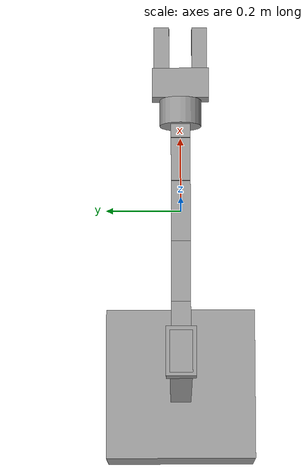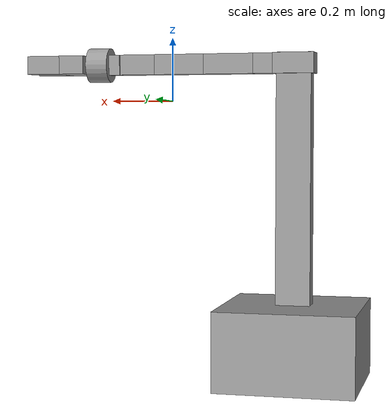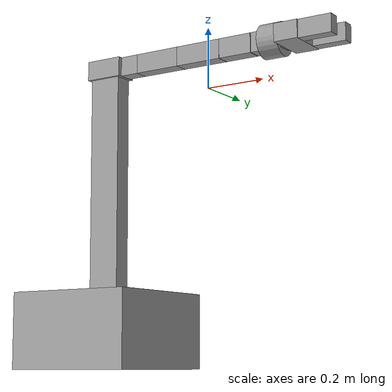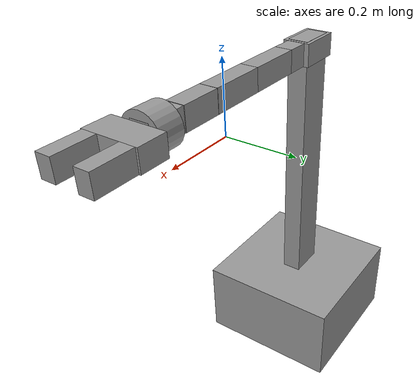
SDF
<?xml version='1.0'?>
<sdf version='1.6'>
  <model name='manipulator'>
    <link name='arm_base'>
      <pose frame=''>-0.395458 0 0.116667 0 -0 0</pose>
      <inertial>
        <mass>1</mass>
        <inertia>
          <ixx>0.166667</ixx>
          <ixy>0</ixy>
          <ixz>0</ixz>
          <iyy>0.166667</iyy>
          <iyz>0</iyz>
          <izz>0.166667</izz>
        </inertia>
        <pose frame=''>0 0 0 0 -0 0</pose>
      </inertial>
      <self_collide>0</self_collide>
      <kinematic>0</kinematic>
      <visual name='visual'>
        <pose frame=''>0 0 0 0 -0 0</pose>
        <geometry>
          <box>
            <size>0.13 0.08 0.065</size>
          </box>
        </geometry>
        <material>
          <lighting>1</lighting>
          <script>
            <uri>file://media/materials/scripts/gazebo.material</uri>
            <name>Gazebo/Grey</name>
          </script>
          <ambient>0.3 0.3 0.3 1</ambient>
          <diffuse>0.7 0.7 0.7 1</diffuse>
          <specular>0.01 0.01 0.01 1</specular>
          <emissive>0 0 0 1</emissive>
          <shader type='vertex'>
            <normal_map>__default__</normal_map>
          </shader>
        </material>
        <cast_shadows>1</cast_shadows>
        <transparency>0</transparency>
      </visual>
      <collision name='collision'>
        <laser_retro>0</laser_retro>
        <max_contacts>10</max_contacts>
        <pose frame=''>0 0 0 0 -0 0</pose>
        <geometry>
          <box>
            <size>0.13 0.08 0.064</size>
          </box>
        </geometry>
        <surface>
          <friction>
            <ode>
              <mu>1</mu>
              <mu2>1</mu2>
              <fdir1>0 0 0</fdir1>
              <slip1>0</slip1>
              <slip2>0</slip2>
            </ode>
            <torsional>
              <coefficient>1</coefficient>
              <patch_radius>0</patch_radius>
              <surface_radius>0</surface_radius>
              <use_patch_radius>1</use_patch_radius>
              <ode>
                <slip>0</slip>
              </ode>
            </torsional>
          </friction>
          <bounce>
            <restitution_coefficient>0</restitution_coefficient>
            <threshold>1e+06</threshold>
          </bounce>
          <contact>
            <collide_without_contact>0</collide_without_contact>
            <collide_without_contact_bitmask>1</collide_without_contact_bitmask>
            <collide_bitmask>1</collide_bitmask>
            <ode>
              <soft_cfm>0</soft_cfm>
              <soft_erp>0.2</soft_erp>
              <kp>1e+13</kp>
              <kd>1</kd>
              <max_vel>0.01</max_vel>
              <min_depth>0</min_depth>
            </ode>
            <bullet>
              <split_impulse>1</split_impulse>
              <split_impulse_penetration_threshold>-0.01</split_impulse_penetration_threshold>
              <soft_cfm>0</soft_cfm>
              <soft_erp>0.2</soft_erp>
              <kp>1e+13</kp>
              <kd>1</kd>
            </bullet>
          </contact>
        </surface>
      </collision>
    </link>
    <link name='arm_cuff'>
      <pose frame=''>0.242042 -0 0.116667 1.57 -0 1.57</pose>
      <inertial>
        <mass>1</mass>
        <inertia>
          <ixx>0.145833</ixx>
          <ixy>0</ixy>
          <ixz>0</ixz>
          <iyy>0.145833</iyy>
          <iyz>0</iyz>
          <izz>0.125</izz>
        </inertia>
        <pose frame=''>0 0 0 -0.01 0 0</pose>
      </inertial>
      <self_collide>0</self_collide>
      <kinematic>0</kinematic>
      <visual name='visual'>
        <pose frame=''>0 0 0 0 -0 0</pose>
        <geometry>
          <cylinder>
            <radius>0.055</radius>
            <length>0.07</length>
          </cylinder>
        </geometry>
        <material>
          <lighting>1</lighting>
          <script>
            <uri>file://media/materials/scripts/gazebo.material</uri>
            <name>Gazebo/Grey</name>
          </script>
          <ambient>0.3 0.3 0.3 1</ambient>
          <diffuse>0.7 0.7 0.7 1</diffuse>
          <specular>0.01 0.01 0.01 1</specular>
          <emissive>0 0 0 1</emissive>
          <shader type='vertex'>
            <normal_map>__default__</normal_map>
          </shader>
        </material>
        <cast_shadows>1</cast_shadows>
        <transparency>0</transparency>
      </visual>
      <collision name='collision'>
        <laser_retro>0</laser_retro>
        <max_contacts>10</max_contacts>
        <pose frame=''>0 0 0 0 -0 0</pose>
        <geometry>
          <cylinder>
            <radius>0.055</radius>
            <length>0.07</length>
          </cylinder>
        </geometry>
        <surface>
          <friction>
            <ode>
              <mu>1</mu>
              <mu2>1</mu2>
              <fdir1>0 0 0</fdir1>
              <slip1>0</slip1>
              <slip2>0</slip2>
            </ode>
            <torsional>
              <coefficient>1</coefficient>
              <patch_radius>0</patch_radius>
              <surface_radius>0</surface_radius>
              <use_patch_radius>1</use_patch_radius>
              <ode>
                <slip>0</slip>
              </ode>
            </torsional>
          </friction>
          <bounce>
            <restitution_coefficient>0</restitution_coefficient>
            <threshold>1e+06</threshold>
          </bounce>
          <contact>
            <collide_without_contact>0</collide_without_contact>
            <collide_without_contact_bitmask>1</collide_without_contact_bitmask>
            <collide_bitmask>1</collide_bitmask>
            <ode>
              <soft_cfm>0</soft_cfm>
              <soft_erp>0.2</soft_erp>
              <kp>1e+13</kp>
              <kd>1</kd>
              <max_vel>0.01</max_vel>
              <min_depth>0</min_depth>
            </ode>
            <bullet>
              <split_impulse>1</split_impulse>
              <split_impulse_penetration_threshold>-0.01</split_impulse_penetration_threshold>
              <soft_cfm>0</soft_cfm>
              <soft_erp>0.2</soft_erp>
              <kp>1e+13</kp>
              <kd>1</kd>
            </bullet>
          </contact>
        </surface>
      </collision>
    </link>
    <link name='arm_part1'>
      <pose frame=''>-0.330458 0 0.116667 0 -0 0</pose>
      <inertial>
        <mass>1</mass>
        <inertia>
          <ixx>0.166667</ixx>
          <ixy>0</ixy>
          <ixz>0</ixz>
          <iyy>0.166667</iyy>
          <iyz>0</iyz>
          <izz>0.166667</izz>
        </inertia>
        <pose frame=''>-0.1 0 0 0 -0 0</pose>
      </inertial>
      <self_collide>0</self_collide>
      <kinematic>0</kinematic>
      <visual name='visual'>
        <pose frame=''>0 0 0 0 -0 0</pose>
        <geometry>
          <box>
            <size>0.13 0.051 0.064</size>
          </box>
        </geometry>
        <material>
          <lighting>1</lighting>
          <script>
            <uri>file://media/materials/scripts/gazebo.material</uri>
            <name>Gazebo/Grey</name>
          </script>
          <ambient>0.3 0.3 0.3 1</ambient>
          <diffuse>0.7 0.7 0.7 1</diffuse>
          <specular>0.01 0.01 0.01 1</specular>
          <emissive>0 0 0 1</emissive>
          <shader type='vertex'>
            <normal_map>__default__</normal_map>
          </shader>
        </material>
        <cast_shadows>1</cast_shadows>
        <transparency>0</transparency>
      </visual>
      <collision name='collision'>
        <laser_retro>0</laser_retro>
        <max_contacts>10</max_contacts>
        <pose frame=''>0 0 0 0 -0 0</pose>
        <geometry>
          <box>
            <size>0.13 0.051 0.064</size>
          </box>
        </geometry>
        <surface>
          <friction>
            <ode>
              <mu>1</mu>
              <mu2>1</mu2>
              <fdir1>0 0 0</fdir1>
              <slip1>0</slip1>
              <slip2>0</slip2>
            </ode>
            <torsional>
              <coefficient>1</coefficient>
              <patch_radius>0</patch_radius>
              <surface_radius>0</surface_radius>
              <use_patch_radius>1</use_patch_radius>
              <ode>
                <slip>0</slip>
              </ode>
            </torsional>
          </friction>
          <bounce>
            <restitution_coefficient>0</restitution_coefficient>
            <threshold>1e+06</threshold>
          </bounce>
          <contact>
            <collide_without_contact>0</collide_without_contact>
            <collide_without_contact_bitmask>1</collide_without_contact_bitmask>
            <collide_bitmask>1</collide_bitmask>
            <ode>
              <soft_cfm>0</soft_cfm>
              <soft_erp>0.2</soft_erp>
              <kp>1e+13</kp>
              <kd>1</kd>
              <max_vel>0.01</max_vel>
              <min_depth>0</min_depth>
            </ode>
            <bullet>
              <split_impulse>1</split_impulse>
              <split_impulse_penetration_threshold>-0.01</split_impulse_penetration_threshold>
              <soft_cfm>0</soft_cfm>
              <soft_erp>0.2</soft_erp>
              <kp>1e+13</kp>
              <kd>1</kd>
            </bullet>
          </contact>
        </surface>
      </collision>
    </link>
    <link name='arm_part2'>
      <pose frame=''>-0.185458 0 0.116667 0 -0 0</pose>
      <inertial>
        <mass>1</mass>
        <inertia>
          <ixx>0.166667</ixx>
          <ixy>0</ixy>
          <ixz>0</ixz>
          <iyy>0.166667</iyy>
          <iyz>0</iyz>
          <izz>0.166667</izz>
        </inertia>
        <pose frame=''>0 0 0 0 -0 0</pose>
      </inertial>
      <self_collide>0</self_collide>
      <kinematic>0</kinematic>
      <visual name='visual'>
        <pose frame=''>0 0 0 0 -0 0</pose>
        <geometry>
          <box>
            <size>0.16 0.051 0.064</size>
          </box>
        </geometry>
        <material>
          <lighting>1</lighting>
          <script>
            <uri>file://media/materials/scripts/gazebo.material</uri>
            <name>Gazebo/Grey</name>
          </script>
          <ambient>0.3 0.3 0.3 1</ambient>
          <diffuse>0.7 0.7 0.7 1</diffuse>
          <specular>0.01 0.01 0.01 1</specular>
          <emissive>0 0 0 1</emissive>
          <shader type='vertex'>
            <normal_map>__default__</normal_map>
          </shader>
        </material>
        <cast_shadows>1</cast_shadows>
        <transparency>0</transparency>
      </visual>
      <collision name='collision'>
        <laser_retro>0</laser_retro>
        <max_contacts>10</max_contacts>
        <pose frame=''>0 0 0 0 -0 0</pose>
        <geometry>
          <box>
            <size>0.16 0.051 0.064</size>
          </box>
        </geometry>
        <surface>
          <friction>
            <ode>
              <mu>1</mu>
              <mu2>1</mu2>
              <fdir1>0 0 0</fdir1>
              <slip1>0</slip1>
              <slip2>0</slip2>
            </ode>
            <torsional>
              <coefficient>1</coefficient>
              <patch_radius>0</patch_radius>
              <surface_radius>0</surface_radius>
              <use_patch_radius>1</use_patch_radius>
              <ode>
                <slip>0</slip>
              </ode>
            </torsional>
          </friction>
          <bounce>
            <restitution_coefficient>0</restitution_coefficient>
            <threshold>1e+06</threshold>
          </bounce>
          <contact>
            <collide_without_contact>0</collide_without_contact>
            <collide_without_contact_bitmask>1</collide_without_contact_bitmask>
            <collide_bitmask>1</collide_bitmask>
            <ode>
              <soft_cfm>0</soft_cfm>
              <soft_erp>0.2</soft_erp>
              <kp>1e+13</kp>
              <kd>1</kd>
              <max_vel>0.01</max_vel>
              <min_depth>0</min_depth>
            </ode>
            <bullet>
              <split_impulse>1</split_impulse>
              <split_impulse_penetration_threshold>-0.01</split_impulse_penetration_threshold>
              <soft_cfm>0</soft_cfm>
              <soft_erp>0.2</soft_erp>
              <kp>1e+13</kp>
              <kd>1</kd>
            </bullet>
          </contact>
        </surface>
      </collision>
    </link>
    <link name='arm_part3'>
      <pose frame=''>-0.025458 -0 0.116667 0 -0 0</pose>
      <inertial>
        <mass>1</mass>
        <inertia>
          <ixx>0.166667</ixx>
          <ixy>0</ixy>
          <ixz>0</ixz>
          <iyy>0.166667</iyy>
          <iyz>0</iyz>
          <izz>0.166667</izz>
        </inertia>
        <pose frame=''>0 0 0 0 -0 0</pose>
      </inertial>
      <self_collide>0</self_collide>
      <kinematic>0</kinematic>
      <visual name='visual'>
        <pose frame=''>0 0 0 0 -0 0</pose>
        <geometry>
          <box>
            <size>0.16 0.051 0.064</size>
          </box>
        </geometry>
        <material>
          <lighting>1</lighting>
          <script>
            <uri>file://media/materials/scripts/gazebo.material</uri>
            <name>Gazebo/Grey</name>
          </script>
          <ambient>0.3 0.3 0.3 1</ambient>
          <diffuse>0.7 0.7 0.7 1</diffuse>
          <specular>0.01 0.01 0.01 1</specular>
          <emissive>0 0 0 1</emissive>
          <shader type='vertex'>
            <normal_map>__default__</normal_map>
          </shader>
        </material>
        <cast_shadows>1</cast_shadows>
        <transparency>0</transparency>
      </visual>
      <collision name='collision'>
        <laser_retro>0</laser_retro>
        <max_contacts>10</max_contacts>
        <pose frame=''>0 0 0 0 -0 0</pose>
        <geometry>
          <box>
            <size>0.16 0.051 0.064</size>
          </box>
        </geometry>
        <surface>
          <friction>
            <ode>
              <mu>1</mu>
              <mu2>1</mu2>
              <fdir1>0 0 0</fdir1>
              <slip1>0</slip1>
              <slip2>0</slip2>
            </ode>
            <torsional>
              <coefficient>1</coefficient>
              <patch_radius>0</patch_radius>
              <surface_radius>0</surface_radius>
              <use_patch_radius>1</use_patch_radius>
              <ode>
                <slip>0</slip>
              </ode>
            </torsional>
          </friction>
          <bounce>
            <restitution_coefficient>0</restitution_coefficient>
            <threshold>1e+06</threshold>
          </bounce>
          <contact>
            <collide_without_contact>0</collide_without_contact>
            <collide_without_contact_bitmask>1</collide_without_contact_bitmask>
            <collide_bitmask>1</collide_bitmask>
            <ode>
              <soft_cfm>0</soft_cfm>
              <soft_erp>0.2</soft_erp>
              <kp>1e+13</kp>
              <kd>1</kd>
              <max_vel>0.01</max_vel>
              <min_depth>0</min_depth>
            </ode>
            <bullet>
              <split_impulse>1</split_impulse>
              <split_impulse_penetration_threshold>-0.01</split_impulse_penetration_threshold>
              <soft_cfm>0</soft_cfm>
              <soft_erp>0.2</soft_erp>
              <kp>1e+13</kp>
              <kd>1</kd>
            </bullet>
          </contact>
        </surface>
      </collision>
    </link>
    <link name='arm_part4'>
      <pose frame=''>0.112542 0 0.116667 0 -0 0</pose>
      <inertial>
        <mass>1</mass>
        <inertia>
          <ixx>0.166667</ixx>
          <ixy>0</ixy>
          <ixz>0</ixz>
          <iyy>0.166667</iyy>
          <iyz>0</iyz>
          <izz>0.166667</izz>
        </inertia>
        <pose frame=''>0 0 0 0 -0 0</pose>
      </inertial>
      <self_collide>0</self_collide>
      <kinematic>0</kinematic>
      <visual name='visual'>
        <pose frame=''>0 0 0 0 -0 0</pose>
        <geometry>
          <box>
            <size>0.114 0.051 0.064</size>
          </box>
        </geometry>
        <material>
          <lighting>1</lighting>
          <script>
            <uri>file://media/materials/scripts/gazebo.material</uri>
            <name>Gazebo/Grey</name>
          </script>
          <ambient>0.3 0.3 0.3 1</ambient>
          <diffuse>0.7 0.7 0.7 1</diffuse>
          <specular>0.01 0.01 0.01 1</specular>
          <emissive>0 0 0 1</emissive>
          <shader type='vertex'>
            <normal_map>__default__</normal_map>
          </shader>
        </material>
        <cast_shadows>1</cast_shadows>
        <transparency>0</transparency>
      </visual>
      <collision name='collision'>
        <laser_retro>0</laser_retro>
        <max_contacts>10</max_contacts>
        <pose frame=''>0 0 0 0 -0 0</pose>
        <geometry>
          <box>
            <size>0.114 0.051 0.064</size>
          </box>
        </geometry>
        <surface>
          <friction>
            <ode>
              <mu>1</mu>
              <mu2>1</mu2>
              <fdir1>0 0 0</fdir1>
              <slip1>0</slip1>
              <slip2>0</slip2>
            </ode>
            <torsional>
              <coefficient>1</coefficient>
              <patch_radius>0</patch_radius>
              <surface_radius>0</surface_radius>
              <use_patch_radius>1</use_patch_radius>
              <ode>
                <slip>0</slip>
              </ode>
            </torsional>
          </friction>
          <bounce>
            <restitution_coefficient>0</restitution_coefficient>
            <threshold>1e+06</threshold>
          </bounce>
          <contact>
            <collide_without_contact>0</collide_without_contact>
            <collide_without_contact_bitmask>1</collide_without_contact_bitmask>
            <collide_bitmask>1</collide_bitmask>
            <ode>
              <soft_cfm>0</soft_cfm>
              <soft_erp>0.2</soft_erp>
              <kp>1e+13</kp>
              <kd>1</kd>
              <max_vel>0.01</max_vel>
              <min_depth>0</min_depth>
            </ode>
            <bullet>
              <split_impulse>1</split_impulse>
              <split_impulse_penetration_threshold>-0.01</split_impulse_penetration_threshold>
              <soft_cfm>0</soft_cfm>
              <soft_erp>0.2</soft_erp>
              <kp>1e+13</kp>
              <kd>1</kd>
            </bullet>
          </contact>
        </surface>
      </collision>
    </link>
    <link name='arm_part5'>
      <pose frame=''>0.224542 0 0.116667 0 -0 0</pose>
      <inertial>
        <mass>1</mass>
        <inertia>
          <ixx>0.166667</ixx>
          <ixy>0</ixy>
          <ixz>0</ixz>
          <iyy>0.166667</iyy>
          <iyz>0</iyz>
          <izz>0.166667</izz>
        </inertia>
        <pose frame=''>0 0 0 0 -0 0</pose>
      </inertial>
      <self_collide>0</self_collide>
      <kinematic>0</kinematic>
      <visual name='visual'>
        <pose frame=''>0 0 0 0 -0 0</pose>
        <geometry>
          <box>
            <size>0.106 0.051 0.064</size>
          </box>
        </geometry>
        <material>
          <lighting>1</lighting>
          <script>
            <uri>file://media/materials/scripts/gazebo.material</uri>
            <name>Gazebo/Grey</name>
          </script>
          <ambient>0.3 0.3 0.3 1</ambient>
          <diffuse>0.7 0.7 0.7 1</diffuse>
          <specular>0.01 0.01 0.01 1</specular>
          <emissive>0 0 0 1</emissive>
          <shader type='vertex'>
            <normal_map>__default__</normal_map>
          </shader>
        </material>
        <cast_shadows>1</cast_shadows>
        <transparency>0</transparency>
      </visual>
      <collision name='collision'>
        <laser_retro>0</laser_retro>
        <max_contacts>10</max_contacts>
        <pose frame=''>0 0 0 0 -0 0</pose>
        <geometry>
          <box>
            <size>0.106 0.051 0.064</size>
          </box>
        </geometry>
        <surface>
          <friction>
            <ode>
              <mu>1</mu>
              <mu2>1</mu2>
              <fdir1>0 0 0</fdir1>
              <slip1>0</slip1>
              <slip2>0</slip2>
            </ode>
            <torsional>
              <coefficient>1</coefficient>
              <patch_radius>0</patch_radius>
              <surface_radius>0</surface_radius>
              <use_patch_radius>1</use_patch_radius>
              <ode>
                <slip>0</slip>
              </ode>
            </torsional>
          </friction>
          <bounce>
            <restitution_coefficient>0</restitution_coefficient>
            <threshold>1e+06</threshold>
          </bounce>
          <contact>
            <collide_without_contact>0</collide_without_contact>
            <collide_without_contact_bitmask>1</collide_without_contact_bitmask>
            <collide_bitmask>1</collide_bitmask>
            <ode>
              <soft_cfm>0</soft_cfm>
              <soft_erp>0.2</soft_erp>
              <kp>1e+13</kp>
              <kd>1</kd>
              <max_vel>0.01</max_vel>
              <min_depth>0</min_depth>
            </ode>
            <bullet>
              <split_impulse>1</split_impulse>
              <split_impulse_penetration_threshold>-0.01</split_impulse_penetration_threshold>
              <soft_cfm>0</soft_cfm>
              <soft_erp>0.2</soft_erp>
              <kp>1e+13</kp>
              <kd>1</kd>
            </bullet>
          </contact>
        </surface>
      </collision>
    </link>
    <link name='arm_rotator'>
      <pose frame=''>0.319542 0 0.116667 0 -0 0</pose>
      <inertial>
        <mass>1</mass>
        <inertia>
          <ixx>0.166667</ixx>
          <ixy>0</ixy>
          <ixz>0</ixz>
          <iyy>0.166667</iyy>
          <iyz>0</iyz>
          <izz>0.166667</izz>
        </inertia>
        <pose frame=''>0 0 0 0 -0 0</pose>
      </inertial>
      <self_collide>0</self_collide>
      <kinematic>0</kinematic>
      <visual name='visual'>
        <pose frame=''>0 0 0 0 -0 0</pose>
        <geometry>
          <box>
            <size>0.08 0.15 0.058</size>
          </box>
        </geometry>
        <material>
          <lighting>1</lighting>
          <script>
            <uri>file://media/materials/scripts/gazebo.material</uri>
            <name>Gazebo/Grey</name>
          </script>
          <ambient>0.3 0.3 0.3 1</ambient>
          <diffuse>0.7 0.7 0.7 1</diffuse>
          <specular>0.01 0.01 0.01 1</specular>
          <emissive>0 0 0 1</emissive>
          <shader type='vertex'>
            <normal_map>__default__</normal_map>
          </shader>
        </material>
        <cast_shadows>1</cast_shadows>
        <transparency>0</transparency>
      </visual>
      <collision name='collision'>
        <laser_retro>0</laser_retro>
        <max_contacts>10</max_contacts>
        <pose frame=''>0 0 0 0 -0 0</pose>
        <geometry>
          <box>
            <size>0.08 0.15 0.058</size>
          </box>
        </geometry>
        <surface>
          <friction>
            <ode>
              <mu>1</mu>
              <mu2>1</mu2>
              <fdir1>0 0 0</fdir1>
              <slip1>0</slip1>
              <slip2>0</slip2>
            </ode>
            <torsional>
              <coefficient>1</coefficient>
              <patch_radius>0</patch_radius>
              <surface_radius>0</surface_radius>
              <use_patch_radius>1</use_patch_radius>
              <ode>
                <slip>0</slip>
              </ode>
            </torsional>
          </friction>
          <bounce>
            <restitution_coefficient>0</restitution_coefficient>
            <threshold>1e+06</threshold>
          </bounce>
          <contact>
            <collide_without_contact>0</collide_without_contact>
            <collide_without_contact_bitmask>1</collide_without_contact_bitmask>
            <collide_bitmask>1</collide_bitmask>
            <ode>
              <soft_cfm>0</soft_cfm>
              <soft_erp>0.2</soft_erp>
              <kp>1e+13</kp>
              <kd>1</kd>
              <max_vel>0.01</max_vel>
              <min_depth>0</min_depth>
            </ode>
            <bullet>
              <split_impulse>1</split_impulse>
              <split_impulse_penetration_threshold>-0.01</split_impulse_penetration_threshold>
              <soft_cfm>0</soft_cfm>
              <soft_erp>0.2</soft_erp>
              <kp>1e+13</kp>
              <kd>1</kd>
            </bullet>
          </contact>
        </surface>
      </collision>
    </link>
    <link name='base'>
      <pose frame=''>-0.396 -0 -0.77 0 -0 0</pose>
      <inertial>
        <mass>1000</mass>
        <inertia>
          <ixx>0.166667</ixx>
          <ixy>0</ixy>
          <ixz>0</ixz>
          <iyy>0.166667</iyy>
          <iyz>0</iyz>
          <izz>0.166667</izz>
        </inertia>
        <pose frame=''>0 0 0 0 -0 0</pose>
      </inertial>
      <self_collide>0</self_collide>
      <kinematic>0</kinematic>
      <visual name='visual'>
        <pose frame=''>0 0 0 0 -0 0</pose>
        <geometry>
          <box>
            <size>0.44 0.44 0.25</size>
          </box>
        </geometry>
        <material>
          <lighting>1</lighting>
          <script>
            <uri>file://media/materials/scripts/gazebo.material</uri>
            <name>Gazebo/Grey</name>
          </script>
          <ambient>0.3 0.3 0.3 1</ambient>
          <diffuse>0.7 0.7 0.7 1</diffuse>
          <specular>0.01 0.01 0.01 1</specular>
          <emissive>0 0 0 1</emissive>
          <shader type='vertex'>
            <normal_map>__default__</normal_map>
          </shader>
        </material>
        <cast_shadows>1</cast_shadows>
        <transparency>0</transparency>
      </visual>
      <collision name='collision'>
        <laser_retro>0</laser_retro>
        <max_contacts>10</max_contacts>
        <pose frame=''>0 0 0 0 -0 0</pose>
        <geometry>
          <box>
            <size>0.44 0.44 0.25</size>
          </box>
        </geometry>
        <surface>
          <friction>
            <ode>
              <mu>1</mu>
              <mu2>1</mu2>
              <fdir1>0 0 0</fdir1>
              <slip1>0</slip1>
              <slip2>0</slip2>
            </ode>
            <torsional>
              <coefficient>1</coefficient>
              <patch_radius>0</patch_radius>
              <surface_radius>0</surface_radius>
              <use_patch_radius>1</use_patch_radius>
              <ode>
                <slip>0</slip>
              </ode>
            </torsional>
          </friction>
          <bounce>
            <restitution_coefficient>0</restitution_coefficient>
            <threshold>1e+06</threshold>
          </bounce>
          <contact>
            <collide_without_contact>0</collide_without_contact>
            <collide_without_contact_bitmask>1</collide_without_contact_bitmask>
            <collide_bitmask>1</collide_bitmask>
            <ode>
              <soft_cfm>0</soft_cfm>
              <soft_erp>0.2</soft_erp>
              <kp>1e+13</kp>
              <kd>1</kd>
              <max_vel>0.01</max_vel>
              <min_depth>0</min_depth>
            </ode>
            <bullet>
              <split_impulse>1</split_impulse>
              <split_impulse_penetration_threshold>-0.01</split_impulse_penetration_threshold>
              <soft_cfm>0</soft_cfm>
              <soft_erp>0.2</soft_erp>
              <kp>1e+13</kp>
              <kd>1</kd>
            </bullet>
          </contact>
        </surface>
      </collision>
    </link>
    <link name='left_finger'>
      <pose frame=''>0.414542 0.05 0.116667 0 -0 0</pose>
      <inertial>
        <mass>1</mass>
        <inertia>
          <ixx>0.166667</ixx>
          <ixy>0</ixy>
          <ixz>0</ixz>
          <iyy>0.166667</iyy>
          <iyz>0</iyz>
          <izz>0.166667</izz>
        </inertia>
        <pose frame=''>0 0 0 0 -0 0</pose>
      </inertial>
      <self_collide>0</self_collide>
      <kinematic>0</kinematic>
      <visual name='visual'>
        <pose frame=''>0 0 0 0 -0 0</pose>
        <geometry>
          <box>
            <size>0.11 0.04 0.058</size>
          </box>
        </geometry>
        <material>
          <lighting>1</lighting>
          <script>
            <uri>file://media/materials/scripts/gazebo.material</uri>
            <name>Gazebo/Grey</name>
          </script>
          <ambient>0.3 0.3 0.3 1</ambient>
          <diffuse>0.7 0.7 0.7 1</diffuse>
          <specular>0.01 0.01 0.01 1</specular>
          <emissive>0 0 0 1</emissive>
          <shader type='vertex'>
            <normal_map>__default__</normal_map>
          </shader>
        </material>
        <cast_shadows>1</cast_shadows>
        <transparency>0</transparency>
      </visual>
      <collision name='collision'>
        <laser_retro>0</laser_retro>
        <max_contacts>10</max_contacts>
        <pose frame=''>0 0 0 0 -0 0</pose>
        <geometry>
          <box>
            <size>0.11 0.04 0.058</size>
          </box>
        </geometry>
        <surface>
          <friction>
            <ode>
              <mu>1</mu>
              <mu2>1</mu2>
              <fdir1>0 0 0</fdir1>
              <slip1>0</slip1>
              <slip2>0</slip2>
            </ode>
            <torsional>
              <coefficient>1</coefficient>
              <patch_radius>0</patch_radius>
              <surface_radius>0</surface_radius>
              <use_patch_radius>1</use_patch_radius>
              <ode>
                <slip>0</slip>
              </ode>
            </torsional>
          </friction>
          <bounce>
            <restitution_coefficient>0</restitution_coefficient>
            <threshold>1e+06</threshold>
          </bounce>
          <contact>
            <collide_without_contact>0</collide_without_contact>
            <collide_without_contact_bitmask>1</collide_without_contact_bitmask>
            <collide_bitmask>1</collide_bitmask>
            <ode>
              <soft_cfm>0</soft_cfm>
              <soft_erp>0.2</soft_erp>
              <kp>1e+13</kp>
              <kd>1</kd>
              <max_vel>0.01</max_vel>
              <min_depth>0</min_depth>
            </ode>
            <bullet>
              <split_impulse>1</split_impulse>
              <split_impulse_penetration_threshold>-0.01</split_impulse_penetration_threshold>
              <soft_cfm>0</soft_cfm>
              <soft_erp>0.2</soft_erp>
              <kp>1e+13</kp>
              <kd>1</kd>
            </bullet>
          </contact>
        </surface>
      </collision>
    </link>
    <link name='right_finger'>
      <pose frame=''>0.414542 -0.05 0.116667 0 -0 0</pose>
      <inertial>
        <mass>1</mass>
        <inertia>
          <ixx>0.166667</ixx>
          <ixy>0</ixy>
          <ixz>0</ixz>
          <iyy>0.166667</iyy>
          <iyz>0</iyz>
          <izz>0.166667</izz>
        </inertia>
        <pose frame=''>0 0 0 0 -0 0</pose>
      </inertial>
      <self_collide>0</self_collide>
      <kinematic>0</kinematic>
      <visual name='visual'>
        <pose frame=''>0 0 0 0 -0 0</pose>
        <geometry>
          <box>
            <size>0.11 0.04 0.058</size>
          </box>
        </geometry>
        <material>
          <lighting>1</lighting>
          <script>
            <uri>file://media/materials/scripts/gazebo.material</uri>
            <name>Gazebo/Grey</name>
          </script>
          <ambient>0.3 0.3 0.3 1</ambient>
          <diffuse>0.7 0.7 0.7 1</diffuse>
          <specular>0.01 0.01 0.01 1</specular>
          <emissive>0 0 0 1</emissive>
          <shader type='vertex'>
            <normal_map>__default__</normal_map>
          </shader>
        </material>
        <cast_shadows>1</cast_shadows>
        <transparency>0</transparency>
      </visual>
      <collision name='collision'>
        <laser_retro>0</laser_retro>
        <max_contacts>10</max_contacts>
        <pose frame=''>0 0 0 0 -0 0</pose>
        <geometry>
          <box>
            <size>0.11 0.04 0.058</size>
          </box>
        </geometry>
        <surface>
          <friction>
            <ode>
              <mu>1</mu>
              <mu2>1</mu2>
              <fdir1>0 0 0</fdir1>
              <slip1>0</slip1>
              <slip2>0</slip2>
            </ode>
            <torsional>
              <coefficient>1</coefficient>
              <patch_radius>0</patch_radius>
              <surface_radius>0</surface_radius>
              <use_patch_radius>1</use_patch_radius>
              <ode>
                <slip>0</slip>
              </ode>
            </torsional>
          </friction>
          <bounce>
            <restitution_coefficient>0</restitution_coefficient>
            <threshold>1e+06</threshold>
          </bounce>
          <contact>
            <collide_without_contact>0</collide_without_contact>
            <collide_without_contact_bitmask>1</collide_without_contact_bitmask>
            <collide_bitmask>1</collide_bitmask>
            <ode>
              <soft_cfm>0</soft_cfm>
              <soft_erp>0.2</soft_erp>
              <kp>1e+13</kp>
              <kd>1</kd>
              <max_vel>0.01</max_vel>
              <min_depth>0</min_depth>
            </ode>
            <bullet>
              <split_impulse>1</split_impulse>
              <split_impulse_penetration_threshold>-0.01</split_impulse_penetration_threshold>
              <soft_cfm>0</soft_cfm>
              <soft_erp>0.2</soft_erp>
              <kp>1e+13</kp>
              <kd>1</kd>
            </bullet>
          </contact>
        </surface>
      </collision>
    </link>
    <link name='stand'>
      <pose frame=''>-0.396 -0 -0.25 0 -0 0</pose>
      <inertial>
        <mass>100</mass>
        <inertia>
          <ixx>0.166667</ixx>
          <ixy>0</ixy>
          <ixz>0</ixz>
          <iyy>0.166667</iyy>
          <iyz>0</iyz>
          <izz>0.166667</izz>
        </inertia>
        <pose frame=''>0 0 0 0 -0 0</pose>
      </inertial>
      <self_collide>0</self_collide>
      <kinematic>0</kinematic>
      <visual name='visual'>
        <pose frame=''>0 0 0 0 -0 0</pose>
        <geometry>
          <box>
            <size>0.11 0.06 0.8</size>
          </box>
        </geometry>
        <material>
          <lighting>1</lighting>
          <script>
            <uri>file://media/materials/scripts/gazebo.material</uri>
            <name>Gazebo/Grey</name>
          </script>
          <ambient>0.3 0.3 0.3 1</ambient>
          <diffuse>0.7 0.7 0.7 1</diffuse>
          <specular>0.01 0.01 0.01 1</specular>
          <emissive>0 0 0 1</emissive>
          <shader type='vertex'>
            <normal_map>__default__</normal_map>
          </shader>
        </material>
        <cast_shadows>1</cast_shadows>
        <transparency>0</transparency>
      </visual>
      <collision name='collision'>
        <laser_retro>0</laser_retro>
        <max_contacts>10</max_contacts>
        <pose frame=''>0 0 0 0 -0 0</pose>
        <geometry>
          <box>
            <size>0.11 0.06 0.8</size>
          </box>
        </geometry>
        <surface>
          <friction>
            <ode>
              <mu>1</mu>
              <mu2>1</mu2>
              <fdir1>0 0 0</fdir1>
              <slip1>0</slip1>
              <slip2>0</slip2>
            </ode>
            <torsional>
              <coefficient>1</coefficient>
              <patch_radius>0</patch_radius>
              <surface_radius>0</surface_radius>
              <use_patch_radius>1</use_patch_radius>
              <ode>
                <slip>0</slip>
              </ode>
            </torsional>
          </friction>
          <bounce>
            <restitution_coefficient>0</restitution_coefficient>
            <threshold>1e+06</threshold>
          </bounce>
          <contact>
            <collide_without_contact>0</collide_without_contact>
            <collide_without_contact_bitmask>1</collide_without_contact_bitmask>
            <collide_bitmask>1</collide_bitmask>
            <ode>
              <soft_cfm>0</soft_cfm>
              <soft_erp>0.2</soft_erp>
              <kp>1e+13</kp>
              <kd>1</kd>
              <max_vel>0.01</max_vel>
              <min_depth>0</min_depth>
            </ode>
            <bullet>
              <split_impulse>1</split_impulse>
              <split_impulse_penetration_threshold>-0.01</split_impulse_penetration_threshold>
              <soft_cfm>0</soft_cfm>
              <soft_erp>0.2</soft_erp>
              <kp>1e+13</kp>
              <kd>1</kd>
            </bullet>
          </contact>
        </surface>
      </collision>
    </link>
    <joint name='Base_fix' type='fixed'>
      <parent>base</parent>
      <child>stand</child>
      <pose frame=''>0 0 0 0 -0 0</pose>
      <physics>
        <ode>
          <limit>
            <cfm>0</cfm>
            <erp>0.2</erp>
          </limit>
          <suspension>
            <cfm>0</cfm>
            <erp>0.2</erp>
          </suspension>
        </ode>
      </physics>
    </joint>
    <joint name='arm_fixed' type='fixed'>
      <parent>arm_base</parent>
      <child>arm_part1</child>
      <pose frame=''>0 0 0 0 -0 0</pose>
      <physics>
        <ode>
          <limit>
            <cfm>0</cfm>
            <erp>0.2</erp>
          </limit>
          <suspension>
            <cfm>0</cfm>
            <erp>0.2</erp>
          </suspension>
        </ode>
      </physics>
    </joint>
    <joint name='arm_height' type='prismatic'>
      <parent>stand</parent>
      <child>arm_base</child>
      <pose frame=''>0 0 0 0 -0 0</pose>
      <axis>
        <xyz>0 0 1</xyz>
        <use_parent_model_frame>0</use_parent_model_frame>
        <limit>
          <lower>-0.7</lower>
          <upper>0</upper>
          <effort>-1</effort>
          <velocity>-1</velocity>
        </limit>
        <dynamics>
          <spring_reference>0</spring_reference>
          <spring_stiffness>0</spring_stiffness>
          <damping>0</damping>
          <friction>0</friction>
        </dynamics>
      </axis>
      <physics>
        <ode>
          <limit>
            <cfm>0</cfm>
            <erp>0.2</erp>
          </limit>
          <suspension>
            <cfm>0</cfm>
            <erp>0.2</erp>
          </suspension>
        </ode>
      </physics>
    </joint>
    <joint name='arm_rotator_joint' type='revolute'>
      <parent>arm_cuff</parent>
      <child>arm_rotator</child>
      <pose frame=''>-0.04 0 0 0 -0 0</pose>
      <axis>
        <xyz>1 0 0</xyz>
        <use_parent_model_frame>0</use_parent_model_frame>
        <limit>
          <lower>-1.57</lower>
          <upper>1.57</upper>
          <effort>-1</effort>
          <velocity>-1</velocity>
        </limit>
        <dynamics>
          <spring_reference>0</spring_reference>
          <spring_stiffness>0</spring_stiffness>
          <damping>0</damping>
          <friction>0</friction>
        </dynamics>
      </axis>
      <physics>
        <ode>
          <limit>
            <cfm>0</cfm>
            <erp>0.2</erp>
          </limit>
          <suspension>
            <cfm>0</cfm>
            <erp>0.2</erp>
          </suspension>
        </ode>
      </physics>
    </joint>
    <joint name='arm_vertical_joint' type='revolute'>
      <parent>arm_part4</parent>
      <child>arm_part5</child>
      <pose frame=''>-0.055 0 0 0 -0 0</pose>
      <axis>
        <xyz>0 1 0</xyz>
        <use_parent_model_frame>0</use_parent_model_frame>
        <limit>
          <lower>-1.57</lower>
          <upper>1.57</upper>
          <effort>-1</effort>
          <velocity>-1</velocity>
        </limit>
        <dynamics>
          <spring_reference>0</spring_reference>
          <spring_stiffness>0</spring_stiffness>
          <damping>0</damping>
          <friction>0</friction>
        </dynamics>
      </axis>
      <physics>
        <ode>
          <limit>
            <cfm>0</cfm>
            <erp>0.2</erp>
          </limit>
          <suspension>
            <cfm>0</cfm>
            <erp>0.2</erp>
          </suspension>
        </ode>
      </physics>
    </joint>
    <joint name='fixed_2' type='fixed'>
      <parent>arm_cuff</parent>
      <child>arm_part5</child>
      <pose frame=''>0 0 0 0 -0 0</pose>
      <physics>
        <ode>
          <limit>
            <cfm>0</cfm>
            <erp>0.2</erp>
          </limit>
          <suspension>
            <cfm>0</cfm>
            <erp>0.2</erp>
          </suspension>
        </ode>
      </physics>
    </joint>
    <joint name='horizontal_arm_joint_1' type='revolute'>
      <parent>arm_part1</parent>
      <child>arm_part2</child>
      <pose frame=''>-0.08 0 0 0 -0 0</pose>
      <axis>
        <xyz>0 0 1</xyz>
        <use_parent_model_frame>0</use_parent_model_frame>
        <limit>
          <lower>-1.57</lower>
          <upper>1.57</upper>
          <effort>-1</effort>
          <velocity>-1</velocity>
        </limit>
        <dynamics>
          <spring_reference>0</spring_reference>
          <spring_stiffness>0</spring_stiffness>
          <damping>0</damping>
          <friction>0</friction>
        </dynamics>
      </axis>
      <physics>
        <ode>
          <limit>
            <cfm>0</cfm>
            <erp>0.2</erp>
          </limit>
          <suspension>
            <cfm>0</cfm>
            <erp>0.2</erp>
          </suspension>
        </ode>
      </physics>
    </joint>
    <joint name='horizontal_arm_joint_2' type='revolute'>
      <parent>arm_part2</parent>
      <child>arm_part3</child>
      <pose frame=''>-0.08 0 0 0 -0 0</pose>
      <axis>
        <xyz>0 0 1</xyz>
        <use_parent_model_frame>0</use_parent_model_frame>
        <limit>
          <lower>-2</lower>
          <upper>2</upper>
          <effort>-1</effort>
          <velocity>-1</velocity>
        </limit>
        <dynamics>
          <spring_reference>0</spring_reference>
          <spring_stiffness>0</spring_stiffness>
          <damping>0</damping>
          <friction>0</friction>
        </dynamics>
      </axis>
      <physics>
        <ode>
          <limit>
            <cfm>0</cfm>
            <erp>0.2</erp>
          </limit>
          <suspension>
            <cfm>0</cfm>
            <erp>0.2</erp>
          </suspension>
        </ode>
      </physics>
    </joint>
    <joint name='horizontal_arm_joint_3' type='revolute'>
      <parent>arm_part3</parent>
      <child>arm_part4</child>
      <pose frame=''>-0.057 0 0 0 -0 0</pose>
      <axis>
        <xyz>0 0 1</xyz>
        <use_parent_model_frame>0</use_parent_model_frame>
        <limit>
          <lower>-2</lower>
          <upper>2</upper>
          <effort>-1</effort>
          <velocity>-1</velocity>
        </limit>
        <dynamics>
          <spring_reference>0</spring_reference>
          <spring_stiffness>0</spring_stiffness>
          <damping>0</damping>
          <friction>0</friction>
        </dynamics>
      </axis>
      <physics>
        <ode>
          <limit>
            <cfm>0</cfm>
            <erp>0.2</erp>
          </limit>
          <suspension>
            <cfm>0</cfm>
            <erp>0.2</erp>
          </suspension>
        </ode>
      </physics>
    </joint>
    <joint name='left_finger_joint' type='prismatic'>
      <parent>arm_rotator</parent>
      <child>left_finger</child>
      <pose frame=''>-0.055 0 0 0 -0 0</pose>
      <axis>
        <xyz>0 -1 0</xyz>
        <use_parent_model_frame>0</use_parent_model_frame>
        <limit>
          <lower>0</lower>
          <upper>0.03</upper>
          <effort>-1</effort>
          <velocity>-1</velocity>
        </limit>
        <dynamics>
          <spring_reference>0</spring_reference>
          <spring_stiffness>0</spring_stiffness>
          <damping>0</damping>
          <friction>0</friction>
        </dynamics>
      </axis>
      <physics>
        <ode>
          <limit>
            <cfm>0</cfm>
            <erp>0.2</erp>
          </limit>
          <suspension>
            <cfm>0</cfm>
            <erp>0.2</erp>
          </suspension>
        </ode>
      </physics>
    </joint>
    <joint name='right_finger_joint' type='prismatic'>
      <parent>arm_rotator</parent>
      <child>right_finger</child>
      <pose frame=''>-0.055 0 0 0 -0 0</pose>
      <axis>
        <xyz>0 1 0</xyz>
        <use_parent_model_frame>0</use_parent_model_frame>
        <limit>
          <lower>0</lower>
          <upper>0.03</upper>
          <effort>-1</effort>
          <velocity>-1</velocity>
        </limit>
        <dynamics>
          <spring_reference>0</spring_reference>
          <spring_stiffness>0</spring_stiffness>
          <damping>0</damping>
          <friction>0</friction>
        </dynamics>
      </axis>
      <physics>
        <ode>
          <limit>
            <cfm>0</cfm>
            <erp>0.2</erp>
          </limit>
          <suspension>
            <cfm>0</cfm>
            <erp>0.2</erp>
          </suspension>
        </ode>
      </physics>
    </joint>
    <static>0</static>
    <allow_auto_disable>1</allow_auto_disable>
  </model>
</sdf>
